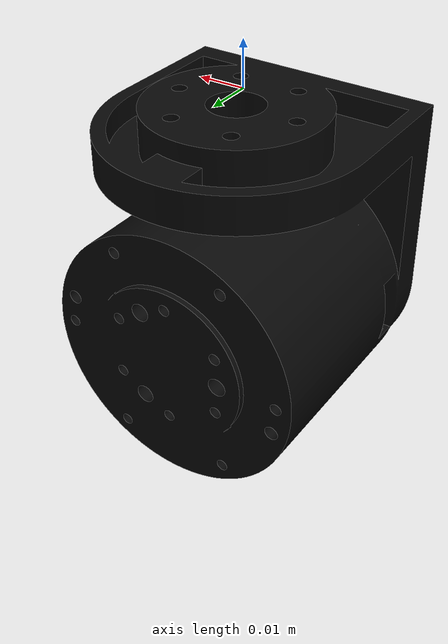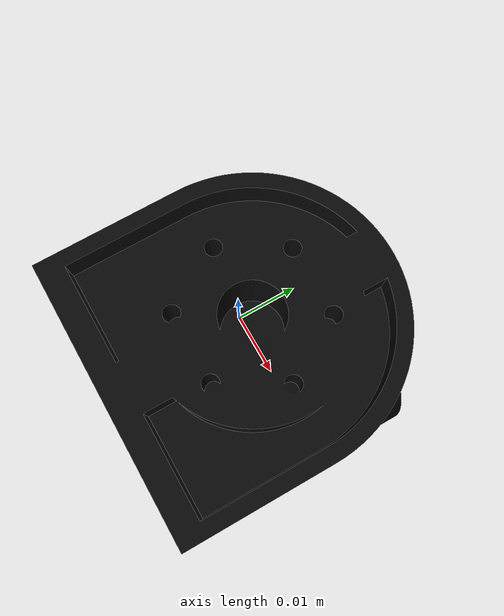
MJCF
<mujoco model="h_link1">
  <default>
    <default class="visual">
      <geom group="2" type="mesh" contype="0" conaffinity="0"/>
    </default>
    <default class="collision">
      <geom group="3" type="mesh"/>
    </default>
  </default>
  <asset>
    <material name="black_metal.002" specular="0.5" shininess="0.09604875199999999" rgba="0.030034 0.030034 0.030034 1.000000"/>
    <mesh file="h_link1.obj"/>
    <mesh file="h_link1_collision_0.obj"/>
    <mesh file="h_link1_collision_1.obj"/>
    <mesh file="h_link1_collision_2.obj"/>
    <mesh file="h_link1_collision_3.obj"/>
    <mesh file="h_link1_collision_4.obj"/>
    <mesh file="h_link1_collision_5.obj"/>
    <mesh file="h_link1_collision_6.obj"/>
    <mesh file="h_link1_collision_7.obj"/>
    <mesh file="h_link1_collision_8.obj"/>
    <mesh file="h_link1_collision_9.obj"/>
  </asset>
  <worldbody>
    <body name="h_link1">
      <geom material="black_metal.002" mesh="h_link1" class="visual"/>
      <geom mesh="h_link1_collision_0" rgba="0.020699575818336813 0.3030017048214675 0.4730461829092708 1" class="collision"/>
      <geom mesh="h_link1_collision_1" rgba="0.6889000563696042 0.20732999703904653 0.029757235504406454 1" class="collision"/>
      <geom mesh="h_link1_collision_2" rgba="0.597420553650597 0.8185580834816197 0.8750579805065548 1" class="collision"/>
      <geom mesh="h_link1_collision_3" rgba="0.796055453185887 0.23207024886935246 0.5421674862491669 1" class="collision"/>
      <geom mesh="h_link1_collision_4" rgba="0.5065601969239569 0.9646864021767905 0.6471928663783881 1" class="collision"/>
      <geom mesh="h_link1_collision_5" rgba="0.6248254961944967 0.17094356072987316 0.6057255618454024 1" class="collision"/>
      <geom mesh="h_link1_collision_6" rgba="0.657560238567502 0.932697897135235 0.19816477162043244 1" class="collision"/>
      <geom mesh="h_link1_collision_7" rgba="0.23041474184659316 0.7999569914758526 0.4956489495908035 1" class="collision"/>
      <geom mesh="h_link1_collision_8" rgba="0.753830861775399 0.950948589842179 0.07331941186236424 1" class="collision"/>
      <geom mesh="h_link1_collision_9" rgba="0.1269151947288425 0.35296730697826595 0.7304463270600301 1" class="collision"/>
    </body>
  </worldbody>
</mujoco>
